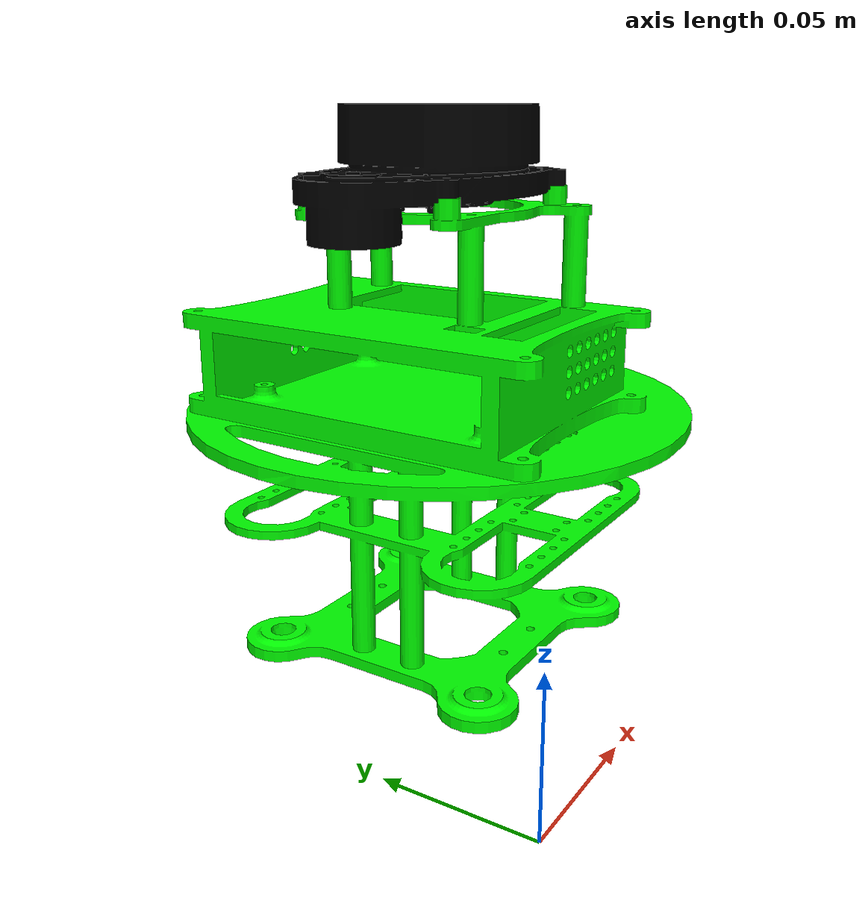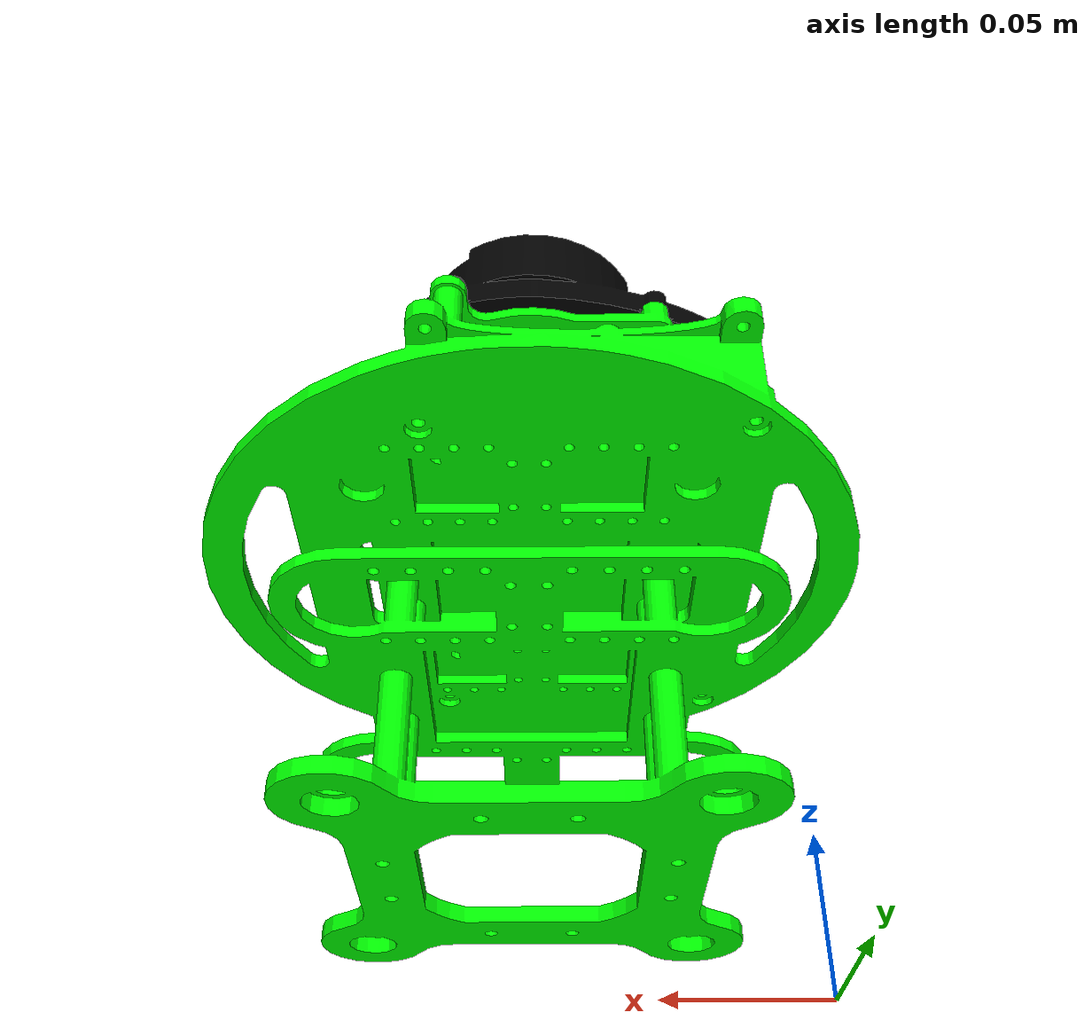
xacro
<?xml version="1.0"?>
<robot xmlns:xacro="http://www.ros.org/wiki/xacro">

    <material name="white">
        <color rgba="1 1 1 1"/>
    </material>

    <material name="black">
        <color rgba="0.0 0.0 0.0 0.0"/>
    </material>
    <material name="green">
        <color rgba="0.0 1.0 0.0 0.0"/>
    </material>

<link name="base_footprint">

</link>

<joint name="base_joint" type="fixed">
    <origin xyz="0.0 0.0 0.0"/>
    <parent link="base_footprint"/>
    <child link="base_link"/>
</joint>

<link name="base_link">
    <visual name="base_visual">
        <origin xyz="0.0 0.0 0.0"/>
        <geometry>
            <mesh filename="package://airosa_description/meshes/base_body.stl" scale="0.001 0.001 0.001"/>
        </geometry>
        <material name="green"/>
    </visual>
    <collision name="base_collision">
        <origin xyz="0.0 0.0 0.0"/>
        <geometry>
            <mesh filename="package://airosa_description/meshes/base_body.stl" scale="0.001 0.001 0.001" />
        </geometry>
    </collision>
    <inertial>
        <mass value="0.5"/>
        <inertia ixx="1.0" ixy="0.0" ixz="0.0" iyy="1.0" iyz="0.0" izz="1.0" />
    </inertial>

</link>

<link name="lds_link">
    <visual name="lds_visual">
        <origin xyz="0.0 0.0 0.0" />
        <geometry>
            <mesh filename="package://airosa_description/meshes/lds.stl" scale="0.001 0.001 0.001"/>
        </geometry>
        <material name="black"/>
    </visual>
    <collision name="lds_collision">
        <origin xyz="0.0 0.0 0.0"/>
        <geometry>
            <mesh filename="package://airosa_description/meshes/lds.stl" scale="0.001 0.001 0.001" />
        </geometry>
    </collision>
    <inertial>
        <mass value="0.5"/>
        <inertia ixx="0.0" ixy="0.0" ixz="0.0" iyy="0.0" iyz="0.0" izz="0.0" />
    </inertial>

</link>

<joint name="lds_joint" type="fixed">
    <origin xyz="0.11775 0.1195 0.1455" rpy="0.0 0.0 3.142"/>
    <parent link="base_link"/>
    <child link="lds_link"/>
</joint>

</robot>
